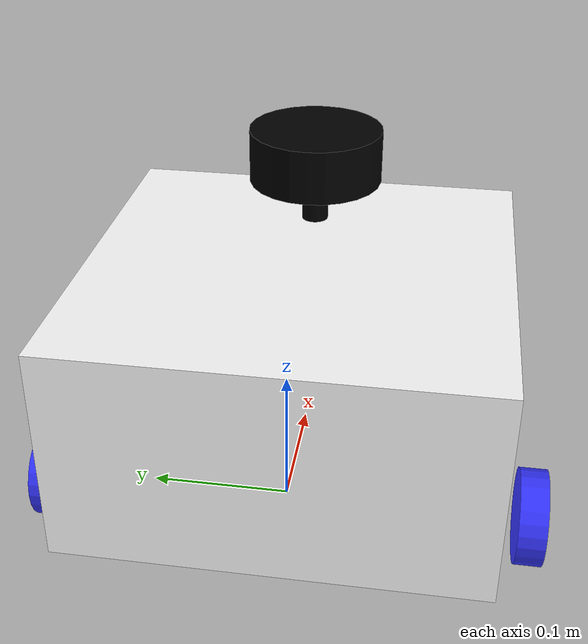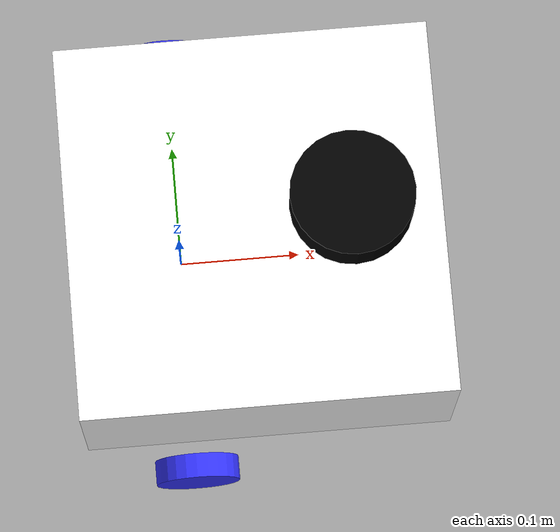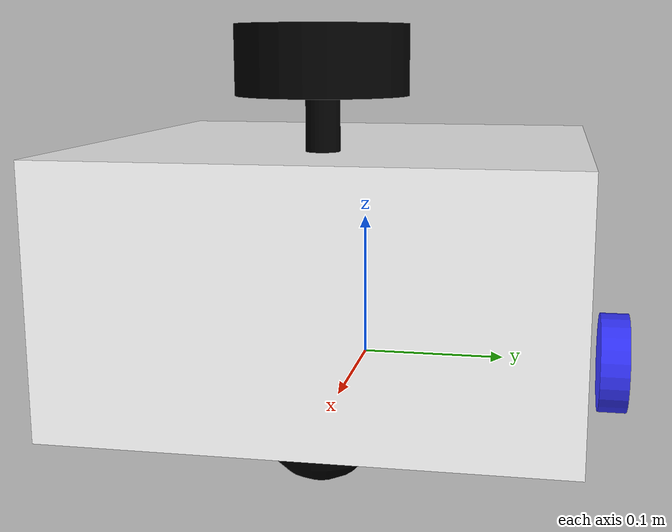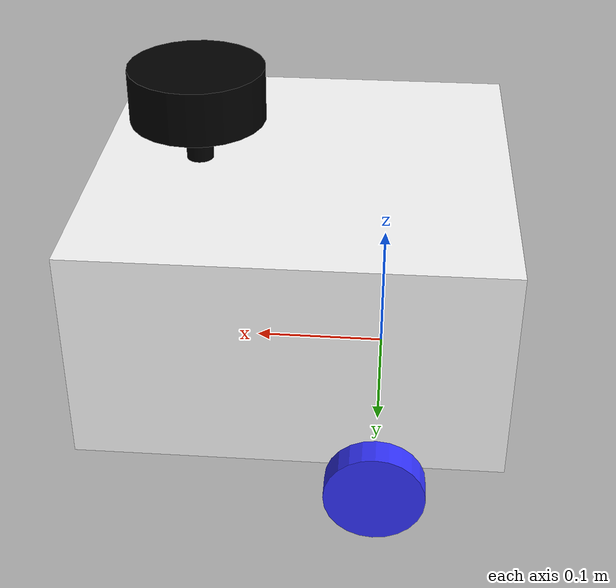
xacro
<?xml version="1.0"?>
<robot xmlns:xacro="http://www.ros.org/wiki/xacro"  name="robot">

    <xacro:arg name="use_ros2_control" default="true"/>
    <xacro:arg name="sim_mode" default="false"/>

    <xacro:include filename="robot_core.xacro" />

    <xacro:if value="$(arg use_ros2_control)">
        <xacro:include filename="ros2_control.xacro" />
    </xacro:if>
    <xacro:unless value="$(arg use_ros2_control)">
        <xacro:include filename="gazebo_control.xacro" />
    </xacro:unless>
    <xacro:include filename="lidar.xacro" />

</robot>

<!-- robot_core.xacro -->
<robot xmlns:xacro="http://www.ros.org/wiki/xacro" >

    <xacro:include filename="inertial_macros.xacro"/>

    <material name="white">
        <color rgba="1 1 1 1" />
    </material>

    <material name="orange">
        <color rgba="1 0.3 0.1 1"/>
    </material>

    <material name="blue">
        <color rgba="0.2 0.2 1 1"/>
    </material>

    <material name="black">
        <color rgba="0 0 0 1"/>
    </material>

    <material name="red">
        <color rgba="1 0 0 1"/>
    </material>

    <!-- BASE LINK -->

    <link name="base_link">

    </link>

    <!-- BASE_FOOTPRINT LINK -->

    <joint name="base_footprint_joint" type="fixed">
        <parent link="base_link"/>
        <child link="base_footprint"/>
        <origin xyz="0 0 0" rpy="0 0 0"/>
    </joint>

    <link name="base_footprint">
    </link>

    <!-- CHASSIS LINK -->

    <joint name="chassis_joint" type="fixed">
        <parent link="base_link"/>
        <child link="chassis"/>
        <origin xyz="-0.09 0 0"/>
    </joint>

    <link name="chassis">
        <visual>
            <origin xyz="0.1525 0 0.08"/>
            <geometry>
                <box size="0.305 0.305 0.16"/>
            </geometry>
            <material name="white"/>
        </visual>
        <collision>
            <origin xyz="0.1525 0 0.08"/>
            <geometry>
                <box size="0.305 0.305 0.16"/>
            </geometry>
        </collision>
        <xacro:inertial_box mass="0.5" x="0.305" y="0.305" z="0.16">
            <origin xyz="0.1525 0 0.08" rpy="0 0 0"/>
        </xacro:inertial_box>
    </link>

    <gazebo reference="chassis">
        <material>Gazebo/White</material>
    </gazebo>

    <!-- LEFT WHEEL LINK -->

    <joint name="left_wheel_joint" type="continuous">
        <parent link="base_link"/>
        <child link="left_wheel"/>
        <origin xyz="0 0.1775 0" rpy="-${pi/2} 0 0" />
        <axis xyz="0 0 1"/>
    </joint>

    <link name="left_wheel">
        <visual>
            <geometry>
                <cylinder radius="0.035" length="0.02"/>
            </geometry>
            <material name="blue"/>
        </visual>
        <collision>
            <geometry>
                <sphere radius="0.035"/>
            </geometry>
        </collision>
        <xacro:inertial_cylinder mass="0.1" length="0.02" radius="0.035">
            <origin xyz="0 0 0" rpy="0 0 0"/>
        </xacro:inertial_cylinder>
    </link>

    <gazebo reference="left_wheel">
        <material>Gazebo/Blue</material>
    </gazebo>

    <!-- RIGHT WHEEL LINK -->

    <joint name="right_wheel_joint" type="continuous">
        <parent link="base_link"/>
        <child link="right_wheel"/>
        <origin xyz="0 -0.1775 0" rpy="${pi/2} 0 0" />
        <axis xyz="0 0 -1"/>
    </joint>

    <link name="right_wheel">
        <visual>
            <geometry>
                <cylinder radius="0.035" length="0.02"/>
            </geometry>
            <material name="blue"/>
        </visual>
        <collision>
            <geometry>
                <sphere radius="0.035" />
            </geometry>
        </collision>
        <xacro:inertial_cylinder mass="0.1" length="0.02" radius="0.035">
            <origin xyz="0 0 0" rpy="0 0 0"/>
        </xacro:inertial_cylinder>
    </link>

    <gazebo reference="right_wheel">
        <material>Gazebo/Blue</material>
    </gazebo>

    <!-- CASTER WHEEL LINK -->

    <joint name="caster_wheel_joint" type="fixed">
        <parent link="chassis"/>
        <child link="caster_wheel"/>
        <origin xyz="0.24 0 0"/>
    </joint>

    <link name="caster_wheel">
        <visual>
            <geometry>
                <sphere radius="0.035"/>
            </geometry>
            <material name="black"/>
        </visual>
        <collision>
            <geometry>
                <sphere radius="0.035"/>
            </geometry>
        </collision>
        <xacro:inertial_sphere mass="0.1" radius="0.035">
            <origin xyz="0 0 0" rpy="0 0 0"/>
        </xacro:inertial_sphere>
    </link>

    <gazebo reference="caster_wheel">
        <material>Gazebo/Black</material>
        <mu1 value="0.001"/>
        <mu2 value="0.001"/>
    </gazebo>

</robot>

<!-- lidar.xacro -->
<robot xmlns:xacro="http://www.ros.org/wiki/xacro" >

    <joint name="laser_joint" type="fixed">
        <parent link="chassis"/>
        <child link="laser_frame"/>
        <origin xyz="0.23 0 0.212" rpy="0 0 0"/>
    </joint>

    <link name="laser_frame">
        <visual>
            <geometry>
                <cylinder radius="0.05" length="0.04"/>
            </geometry>
            <material name="black"/>
        </visual>
        <visual>
            <origin xyz="0 0 -0.05"/>
            <geometry>
                <cylinder radius="0.01" length="0.1"/>
            </geometry>
            <material name="black"/>
        </visual>
        <collision>
            <geometry>
                <cylinder radius="0.05" length="0.04"/>
            </geometry>
        </collision>
        <xacro:inertial_cylinder mass="0.1" length="0.04" radius="0.05">
            <origin xyz="0 0 0" rpy="0 0 0"/>
        </xacro:inertial_cylinder>
    </link>

    <gazebo reference="laser_frame">
        <material>Gazebo/Black</material>

        <sensor name="laser" type="gpu_lidar">
            <pose> 0 0 0 0 0 0 </pose>
            <visualize>false</visualize>
            <update_rate>10</update_rate>
            <lidar>
                <scan>
                    <horizontal>
                        <samples>360</samples>
                        <min_angle>-3.14</min_angle>
                        <max_angle>3.14</max_angle>
                    </horizontal>
                </scan>
                <range>
                    <min>0.3</min>
                    <max>12</max>
                </range>
            </lidar>

            <topic>scan</topic>

            <gz_frame_id>laser_frame</gz_frame_id>

        </sensor>
    </gazebo>

</robot>
